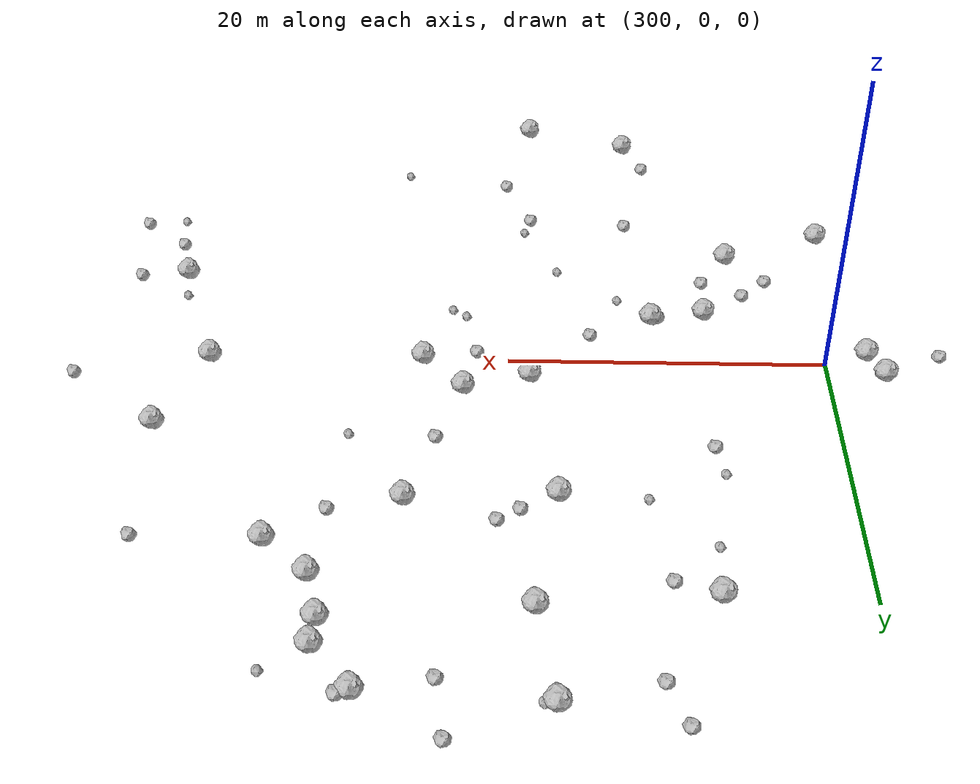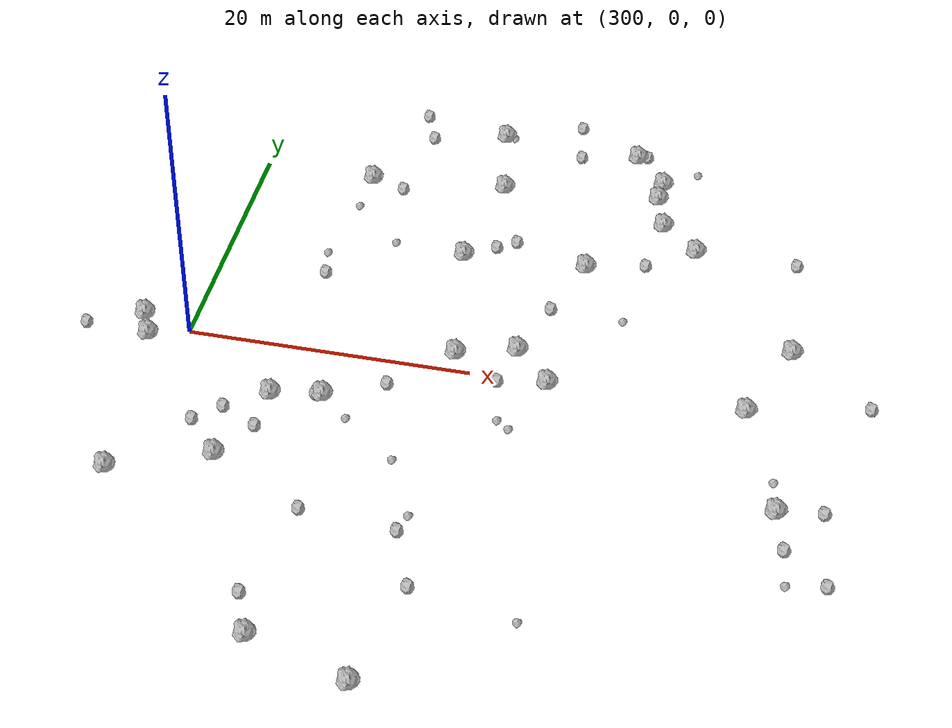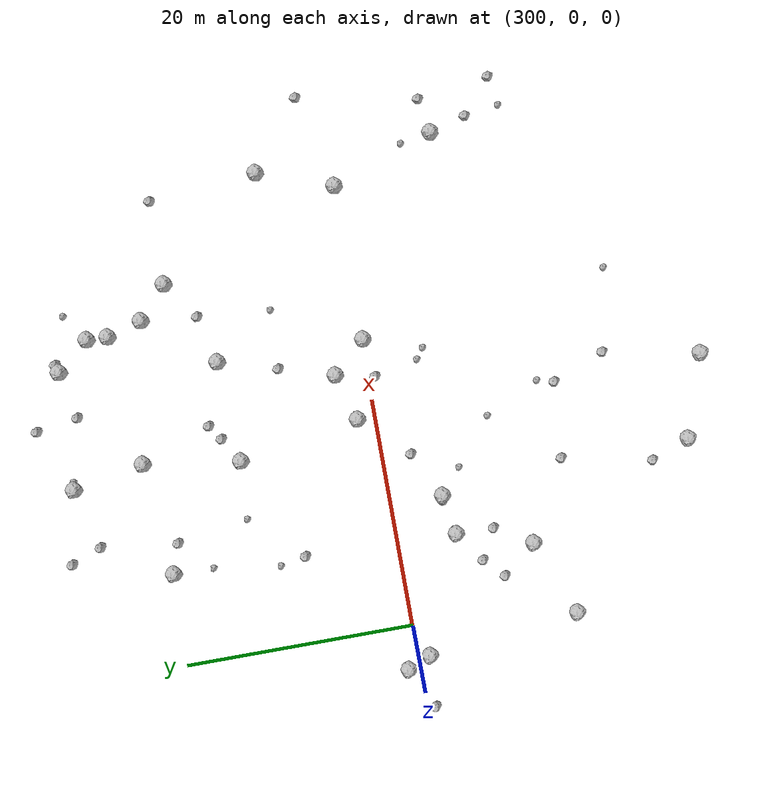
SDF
<sdf version="1.6">
 <world name="default">
  <include><uri>model://sun</uri></include>
  <model name="rock1_8_3">
   <include><uri>model://rock1</uri><pose>329.65357354208805 23.51844236899116 0.5 0 0 0</pose></include>
  </model>
  <model name="rock1_8_4">
   <include><uri>model://rock1</uri><pose>296.44235920378156 0.9715274946105694 0.5 0 0 0</pose></include>
  </model>
  <model name="rock1_8_5">
   <include><uri>model://rock1</uri><pose>298.75130152210625 -14.330857114558722 0.5 0 0 0</pose></include>
  </model>
  <model name="rock1_8_6">
   <include><uri>model://rock1</uri><pose>333.23029168074584 16.071793905829104 0.5 0 0 0</pose></include>
  </model>
  <model name="rock1_8_7">
   <include><uri>model://rock1</uri><pose>305.3635747390354 -11.645358323006004 0.5 0 0 0</pose></include>
  </model>
  <model name="rock1_8_8">
   <include><uri>model://rock1</uri><pose>329.57045406748205 21.687332506374062 0.5 0 0 0</pose></include>
  </model>
  <model name="rock1_8_9">
   <include><uri>model://rock1</uri><pose>307.343890173716 -5.16490546742321 0.5 0 0 0</pose></include>
  </model>
  <model name="rock1_8_10">
   <include><uri>model://rock1</uri><pose>327.2694467000318 26.39925450663044 0.5 0 0 0</pose></include>
  </model>
  <model name="rock1_8_11">
   <include><uri>model://rock1</uri><pose>342.13165615267627 -9.082606812760993 0.5 0 0 0</pose></include>
  </model>
  <model name="rock1_8_12">
   <include><uri>model://rock1</uri><pose>341.34001756511185 6.5077669740398605 0.5 0 0 0</pose></include>
  </model>
  <model name="rock1_8_13">
   <include><uri>model://rock1</uri><pose>310.8360957683978 -4.565543706175447 0.5 0 0 0</pose></include>
  </model>
  <model name="rock1_8_14">
   <include><uri>model://rock1</uri><pose>325.44316803272665 -0.15174339134208026 0.5 0 0 0</pose></include>
  </model>
  <model name="rock1_8_15">
   <include><uri>model://rock1</uri><pose>339.0211674650521 -0.04590178867968575 0.5 0 0 0</pose></include>
  </model>
  <model name="rock1_8_16">
   <include><uri>model://rock1</uri><pose>319.0471859846407 -28.80606971883928 0.5 0 0 0</pose></include>
  </model>
  <model name="rock1_8_17">
   <include><uri>model://rock1</uri><pose>318.1306398520671 20.627387019293785 0.5 0 0 0</pose></include>
  </model>
  <model name="rock1_8_18">
   <include><uri>model://rock1</uri><pose>297.3209439158185 -1.0656876375500026 0.5 0 0 0</pose></include>
  </model>
  <model name="rock1_8_19">
   <include><uri>model://rock1</uri><pose>322.7890009332955 2.7625773433094025 0.5 0 0 0</pose></include>
  </model>
  <model name="rock1_8_20">
   <include><uri>model://rock1</uri><pose>316.8842308061063 12.175345106474623 0.5 0 0 0</pose></include>
  </model>
  <model name="rock1_8_21">
   <include><uri>model://rock1</uri><pose>308.25039238486545 19.650287107424525 0.5 0 0 0</pose></include>
  </model>
  <model name="rock1_8_22">
   <include><uri>model://rock1</uri><pose>311.9248878525189 -26.46178025846025 0.5 0 0 0</pose></include>
  </model>
  <model name="rock1_8_23">
   <include><uri>model://rock1</uri><pose>318.6661292122919 1.5369075225331983 0.5 0 0 0</pose></include>
  </model>
  <model name="rock1_8_24">
   <include><uri>model://rock1</uri><pose>325.7440178998794 12.67123925416196 0.5 0 0 0</pose></include>
  </model>
  <model name="rock1_8_25">
   <include><uri>model://rock1</uri><pose>330.44578763039436 18.590683844607362 0.5 0 0 0</pose></include>
  </model>
  <model name="rock1_8_26">
   <include><uri>model://rock1</uri><pose>316.9744885143627 26.91656883542572 0.5 0 0 0</pose></include>
  </model>
  <model name="rock2_8_0">
   <include><uri>model://rock2</uri><pose>346.0400112464317 -14.877694317870398 0.3 0 0 0</pose></include>
  </model>
  <model name="rock2_8_1">
   <include><uri>model://rock2</uri><pose>292.756669417762 -0.7512346274547745 0.3 0 0 0</pose></include>
  </model>
  <model name="rock2_8_2">
   <include><uri>model://rock2</uri><pose>320.3387472489645 14.440485974299321 0.3 0 0 0</pose></include>
  </model>
  <model name="rock2_8_3">
   <include><uri>model://rock2</uri><pose>304.60749556821037 -7.0562759511631015 0.3 0 0 0</pose></include>
  </model>
  <model name="rock2_8_4">
   <include><uri>model://rock2</uri><pose>343.02509826361603 -12.304899167070172 0.3 0 0 0</pose></include>
  </model>
  <model name="rock2_8_5">
   <include><uri>model://rock2</uri><pose>329.9137492517971 13.765120705780873 0.3 0 0 0</pose></include>
  </model>
  <model name="rock2_8_6">
   <include><uri>model://rock2</uri><pose>327.9552076589913 26.683263679822097 0.3 0 0 0</pose></include>
  </model>
  <model name="rock2_8_7">
   <include><uri>model://rock2</uri><pose>314.82144327458354 -2.4940513289657495 0.3 0 0 0</pose></include>
  </model>
  <model name="rock2_8_8">
   <include><uri>model://rock2</uri><pose>310.5689102538041 -23.15129486699945 0.3 0 0 0</pose></include>
  </model>
  <model name="rock2_8_9">
   <include><uri>model://rock2</uri><pose>323.07693411909764 25.600959517910212 0.3 0 0 0</pose></include>
  </model>
  <model name="rock2_8_10">
   <include><uri>model://rock2</uri><pose>310.3510209825692 -4.526221823742208 0.3 0 0 0</pose></include>
  </model>
  <model name="rock2_8_11">
   <include><uri>model://rock2</uri><pose>311.5845711925107 25.59734054659488 0.3 0 0 0</pose></include>
  </model>
  <model name="rock2_8_12">
   <include><uri>model://rock2</uri><pose>307.65368879597696 8.132289667799107 0.3 0 0 0</pose></include>
  </model>
  <model name="rock2_8_13">
   <include><uri>model://rock2</uri><pose>324.18041322469526 7.5849849551231046 0.3 0 0 0</pose></include>
  </model>
  <model name="rock2_8_14">
   <include><uri>model://rock2</uri><pose>310.75321828127693 18.864197176358886 0.3 0 0 0</pose></include>
  </model>
  <model name="rock2_8_15">
   <include><uri>model://rock2</uri><pose>322.04365158831394 -0.6074356510600474 0.3 0 0 0</pose></include>
  </model>
  <model name="rock2_8_16">
   <include><uri>model://rock2</uri><pose>320.6306199769348 -20.4693603178212 0.3 0 0 0</pose></include>
  </model>
  <model name="rock2_8_17">
   <include><uri>model://rock2</uri><pose>322.48035991836826 29.293489093566222 0.3 0 0 0</pose></include>
  </model>
  <model name="rock2_8_18">
   <include><uri>model://rock2</uri><pose>302.92393730782624 -8.705766234916144 0.3 0 0 0</pose></include>
  </model>
  <model name="rock2_8_19">
   <include><uri>model://rock2</uri><pose>347.19894677723283 1.9685735828474087 0.3 0 0 0</pose></include>
  </model>
  <model name="rock2_8_20">
   <include><uri>model://rock2</uri><pose>312.1654794816089 -15.332881588241165 0.3 0 0 0</pose></include>
  </model>
  <model name="rock2_8_21">
   <include><uri>model://rock2</uri><pose>307.2082096183803 -8.441847906415788 0.3 0 0 0</pose></include>
  </model>
  <model name="rock2_8_22">
   <include><uri>model://rock2</uri><pose>310.536952209887 28.27154498380017 0.3 0 0 0</pose></include>
  </model>
  <model name="rock2_8_23">
   <include><uri>model://rock2</uri><pose>319.03246031635115 13.551573341987819 0.3 0 0 0</pose></include>
  </model>
  <model name="rock2_8_24">
   <include><uri>model://rock2</uri><pose>345.19009634477175 -8.552937687565652 0.3 0 0 0</pose></include>
  </model>
  <model name="rock2_8_25">
   <include><uri>model://rock2</uri><pose>340.5449641389304 16.072963312195704 0.3 0 0 0</pose></include>
  </model>
  <model name="rock2_8_26">
   <include><uri>model://rock2</uri><pose>318.81727994527824 -15.903344407522567 0.3 0 0 0</pose></include>
  </model>
  <model name="rock3_8_0">
   <include><uri>model://rock3</uri><pose>323.7564941452784 -5.1651915030934 0.2 0 0 0</pose></include>
  </model>
  <model name="rock3_8_1">
   <include><uri>model://rock3</uri><pose>327.84704413401715 -21.94033799731697 0.2 0 0 0</pose></include>
  </model>
  <model name="rock3_8_2">
   <include><uri>model://rock3</uri><pose>316.90560752826445 -9.681620162005842 0.2 0 0 0</pose></include>
  </model>
  <model name="rock3_8_3">
   <include><uri>model://rock3</uri><pose>343.4513571861189 -15.376923774606981 0.2 0 0 0</pose></include>
  </model>
  <model name="rock3_8_4">
   <include><uri>model://rock3</uri><pose>308.04327974160793 16.185880967560202 0.2 0 0 0</pose></include>
  </model>
  <model name="rock3_8_5">
   <include><uri>model://rock3</uri><pose>319.1831228547275 -14.470193329049454 0.2 0 0 0</pose></include>
  </model>
  <model name="rock3_8_6">
   <include><uri>model://rock3</uri><pose>341.6156053296027 -6.428246835397648 0.2 0 0 0</pose></include>
  </model>
  <model name="rock3_8_7">
   <include><uri>model://rock3</uri><pose>317.58241340253954 26.909472190886774 0.2 0 0 0</pose></include>
  </model>
  <model name="rock3_8_8">
   <include><uri>model://rock3</uri><pose>331.98346734724066 25.264399193325936 0.2 0 0 0</pose></include>
  </model>
  <model name="rock3_8_9">
   <include><uri>model://rock3</uri><pose>311.7212760336624 12.536134839114297 0.2 0 0 0</pose></include>
  </model>
  <model name="rock3_8_10">
   <include><uri>model://rock3</uri><pose>329.3391499693325 7.337390325074466 0.2 0 0 0</pose></include>
  </model>
  <model name="rock3_8_11">
   <include><uri>model://rock3</uri><pose>307.17669007044793 10.355931352852963 0.2 0 0 0</pose></include>
  </model>
  <model name="rock3_8_12">
   <include><uri>model://rock3</uri><pose>312.9234476682417 -6.4570113879432185 0.2 0 0 0</pose></include>
  </model>
  <model name="rock3_8_13">
   <include><uri>model://rock3</uri><pose>322.8414792349805 -4.491806267459843 0.2 0 0 0</pose></include>
  </model>
 </world>
</sdf>
